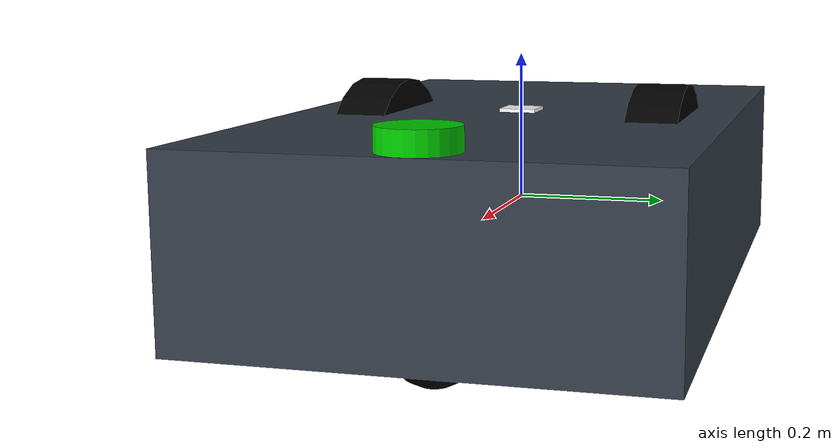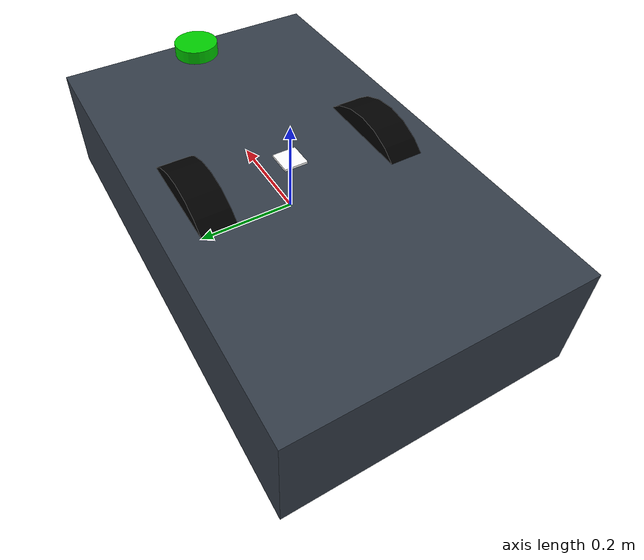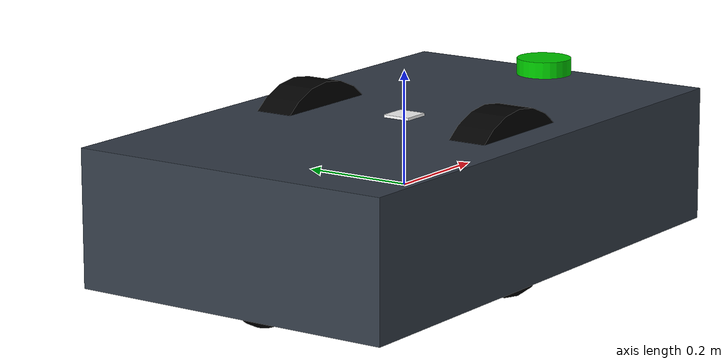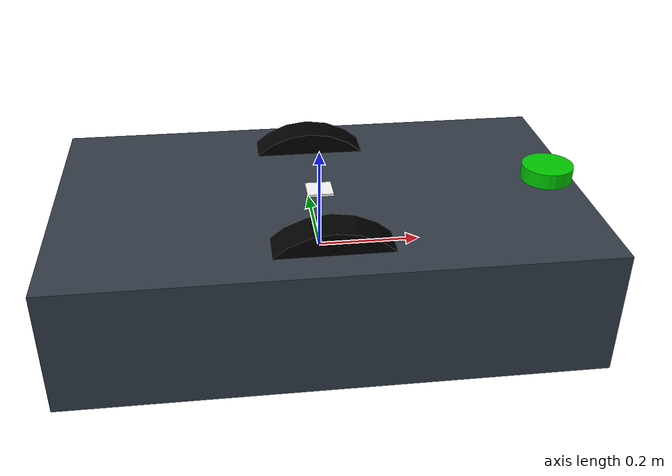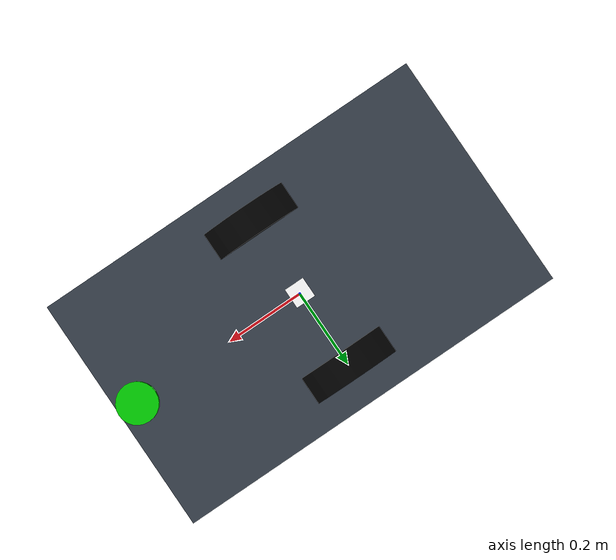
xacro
<?xml version="1.0"?>

<!--Created by Alphonsus Adu-Bredu
	Assistive Robotics Group, Tufts University
    Email: alphonsusbq436@gmail.com
-->
<robot name="bill" xmlns:xacro="http://www.ros.org/wiki/xacro">

<!-- Sphere inertia -->
	<xacro:macro name="sphere_inertial_with_origin" params="radius mass *origin">
	    <inertial>
	      <mass value="${mass}" />
	      <insert_block name="origin" />
	      <inertia ixx="${0.4 * mass * radius * radius}" ixy="0.0" ixz="0.0"
	        iyy="${0.4 * mass * radius * radius}" iyz="0.0"
	        izz="${0.4 * mass * radius * radius}" />
	    </inertial>
	  </xacro:macro>

<!-- Cuboid inertia -->
	<xacro:macro name="box_inertial" params="x y z mass">
		    <inertial>
		      <mass value="${mass}" />
		      <origin xyz="0 0 0" />
		      <inertia ixx="${0.0833333 * mass * (y*y + z*z)}" ixy="0.0" ixz="0.0"
		        iyy="${0.0833333 * mass * (x*x + z*z)}" iyz="0.0"
		        izz="${0.0833333 * mass * (x*x + y*y)}" />
		    </inertial>
    </xacro:macro>

<!-- Cylinder inertia -->
	<xacro:macro name="cylinder_inertial_with_origin" params="radius length mass *origin">
	    <inertial>
	      <mass value="${mass}" />
	      <insert_block name="origin" />
	      <inertia ixx="${0.0833333 * mass * (3 * radius * radius + length * length)}" ixy="0.0" ixz="0.0"
	        iyy="${0.0833333 * mass * (3 * radius * radius + length * length)}" iyz="0.0"
	        izz="${0.5 * mass * radius * radius}" />
	    </inertial>
  </xacro:macro>

	<gazebo>
	  <plugin name="gazebo_ros_control" filename="libgazebo_ros_control.so">
	    <robotNamespace>/bill</robotNamespace>
	    <robotSimType>gazebo_ros_control/DefaultRobotHWSim</robotSimType>
	  </plugin>
	</gazebo>

	<material name="black">
		<color rgba="0.0 0.0 0.0 1.0"/>
	</material>
	<material name="blue">
		<color rgba="0.203125 0.23828125 0.28515625 1.0"/>
	</material>
	<material name="green">
		<color rgba="0.0 0.8 0.0 1.0"/>
	</material>
	<material name="grey">
		<color rgba="0.2 0.2 0.2 1.0"/>
	</material>
	<material name="orange">
		<color rgba="1.0 0.423529411765 0.0392156862745 1.0"/>
	</material>
	<material name="brown">
		<color rgba="0.870588235294 0.811764705882 0.764705882353 1.0"/>
	</material>
	<material name="red">
		<color rgba="0.80078125 0.12890625 0.1328425 1.0"/>
	</material>
	<material name="white">
		<color rgba="1.0 1.0 1.0 1.0"/>
	</material>

	<gazebo reference="chassis">
		<material>Gazebo/White</material>
	</gazebo>

	<gazebo reference="caster">
		<material>Gazebo/Black</material>
	</gazebo>
	<gazebo reference="left_wheel">
		<material>Gazebo/Black</material>
	</gazebo>
	<gazebo reference="right_wheel">
		<material>Gazebo/Black</material>
	</gazebo>

	<link name="base_link"/>

	<link name="chassis">
		<!--pose and inertial-->
		<pose>0 0 0.1 0 0 0 </pose>
		<xacro:box_inertial x="1" y="0.6" z="0.24" mass="4"/>

		<!--body-->
		<collision name="collision_chassis">
			<geometry>
				<box size="1 0.6 0.24"/>
			</geometry>
		</collision>

		<visual>
			<origin rpy="0 0 0" xyz="0 0 0"/>
			<geometry>
				<box size="1 0.6 0.24"/>
			</geometry>
			<material name="blue"/>
		</visual>
	</link>

	<joint name="base_link_joint" type="fixed" >
		<parent link="base_link"/>
		<child link="chassis"/>

	</joint>

		<!--caster front -->
		<link name="caster">
			<inertial>
				<mass value="0.5"/>
				<origin rpy="1.57079632679 0 0" xyz="0 0 0"/>
				<inertia ixx="0.001" ixy="0" ixz="0" iyy="0.001" iyz="0" izz="0.001"/>
			</inertial>

			<collision name="caster_front_collision">
				<origin rpy="1.57079632679 0 0" xyz="0 0 -0.1"/>
				<geometry>
					<sphere radius="0.06"/>
				</geometry>
				<surface>
					<friction>
						<ode>
							<mu>0</mu>
							<mu2>0</mu2>
							<slip1>1.0</slip1>
							<slip2>1.0</slip2>
						</ode>
					</friction>
				</surface>
			</collision>

			<visual name="caster_front_visual">
				<origin rpy="1.57079632679 0 0" xyz="0 0 -0.1"/>
				<geometry>
					<sphere radius="0.06"/>
				</geometry>
				<material name="black"/>
			</visual>
		</link>

	<joint name="caster_front_joint" type="fixed">
	    <parent link="chassis"/>
	    <child link="caster"/>
	    <origin rpy="-1.57079632679 0 0" xyz="0.4 0.1 -0.1"/>
	</joint>

	  <gazebo reference="caster">
	    <turnGravityOff>false</turnGravityOff>
	  </gazebo>

	  <!--caster back -->
		<link name="casterback">

			<inertial>
				<mass value="0.6"/>
				<origin rpy="1.57079632679 0 0" xyz="0 0 0"/>
				<inertia ixx="0.001" ixy="0" ixz="0" iyy="0.001" iyz="0" izz="0.001"/>
			</inertial>

			<collision name="caster_back_collision">
				<origin rpy="1.57079632679 0 0" xyz="0 0 -0.1"/>
				<geometry>
					<sphere radius="0.06"/>
				</geometry>
				<surface>
					<friction>
						<ode>
							<mu>0</mu>
							<mu2>0</mu2>
							<slip1>1.0</slip1>
							<slip2>1.0</slip2>
						</ode>
					</friction>
				</surface>
			</collision>

			<visual name="caster_back_visual">
				<origin rpy="1.57079632679 0 0" xyz="0 0 -0.1"/>
				<geometry>
					<sphere radius="0.06"/>
				</geometry>
				<material name="black"/>
			</visual>
	</link>

	<joint name="caster_back_joint" type="fixed">
	    <parent link="chassis"/>
	    <child link="casterback"/>
	    <origin rpy="-1.57079632679 0 0" xyz="-0.4 0.1 -0.1"/>
	</joint>

	  <gazebo reference="casterback">
	    <turnGravityOff>false</turnGravityOff>
	  </gazebo>

<!--right wheel -->
	<link name="right_wheel">

		<inertial>
			<mass value="1"/>
			<origin rpy="0 1.5707 1.5707" xyz="0 0 0"/>
			<inertia ixx="0.000526666666667" ixy="0" ixz="0" iyy="0.000526666666667" iyz="0" izz="0.001"/>
		</inertial>

		<collision name="right_wheel_collision">
			<origin rpy="0 1.5707 1.5707" xyz="0 0 0"/>
			<geometry>
				<cylinder length="0.07" radius="0.162"/>
			</geometry>
		</collision>

		<visual name="right_wheel_visual">
			<origin rpy="0 1.5707 1.5707" xyz="0 0 0"/>
			<geometry>
				<cylinder length="0.07" radius="0.162"/>
			</geometry>
			<material name="black"/>
		</visual>
	</link>

	<joint name="right_wheel_joint" type="continuous">
		<origin rpy="0 0 0" xyz="0.0 0.20 0"/>
		<child link="right_wheel"/>
		<parent link="chassis"/>
		<axis rpy="0 0 0" xyz="0 1 0"/>
		<limit effort="10000" velocity="1000"/>
		<joint_properties damping="1.0" friction="1.0"/>
	</joint>

<!--left wheel -->
	<link name="left_wheel">

		<inertial>
			<mass value="1"/>
			<origin rpy="0 1.5707 1.5707" xyz="0 0 0"/>
			<inertia ixx="0.000526666666667" ixy="0" ixz="0" iyy="0.000526666666667" iyz="0" izz="0.001"/>
		</inertial>

		<collision name="left_wheel_collision">
			<origin rpy="0 1.5707 1.5707" xyz="0 0 0"/>
			<geometry>
				<cylinder length="0.07" radius="0.162"/>
			</geometry>
		</collision>

		<visual name="left_wheel_visual">
			<origin rpy="0 1.5707 1.5707" xyz="0 0 0"/>
			<geometry>
				<cylinder length="0.07" radius="0.162"/>
			</geometry>
			<material name="black"/>
		</visual>
	</link>

	<joint name="left_wheel_joint" type="continuous">
		<origin rpy="0 0 0" xyz="0.0 -0.20 0"/>
		<child link="left_wheel"/>
		<parent link="chassis"/>
		<axis rpy="0 0 0" xyz="0 1 0"/>
		<limit effort="10000" velocity="1000"/>
		<joint_properties damping="1.0" friction="1.0"/>
	</joint>

	<!--IMU-->
	<link name="imu">
	    <visual>
	      <origin rpy="0 0 0" xyz="0  0  0"/>
	      <geometry>
	        <box size="0.05 0.05 0.05"/>
	      </geometry>
	      <material name="white"/>
	    </visual>

	    <collision>
	      <origin rpy="0 0 0" xyz="0  0  0"/>
	      <geometry>
	        <box size="0.05 0.05 0.05"/>
	      </geometry>
	      <material name="white"/>
	    </collision>

	    <inertial>
		  <origin xyz="0 0 0.015" rpy="0 0 0"/>
		  <mass value="0.0001"/>
		  <inertia
		    ixx="1.0" ixy="0.0" ixz="0.0"
		    iyy="1.0" iyz="0.0"
		    izz="1.0"/>
		</inertial>
	</link>

	<joint name="imu_joint" type="fixed" >
		<parent link="chassis"/>
		<child link="imu"/>
		<origin xyz="0.0 0 0.1" rpy="0 0 0"/>
	</joint>

	<gazebo reference="imu">
		<material>Gazebo/Blue</material>
	    <gravity>true</gravity>
	    <sensor name="imu_sensor" type="imu">
	      <always_on>true</always_on>
	      <update_rate>100</update_rate>
	      <visualize>true</visualize>
	      <topic>__default_topic__</topic>
	      <plugin filename="libgazebo_ros_imu_sensor.so" name="imu_plugin">
	        <topicName>/imu</topicName>
	        <bodyName>imu</bodyName>
	        <updateRateHZ>10.0</updateRateHZ>
	        <gaussianNoise>0.0</gaussianNoise>
	        <xyzOffset>0 0 0</xyzOffset>
	        <rpyOffset>0 0 0</rpyOffset>
	        <frameName>imu</frameName>
	      </plugin>
	      <pose>0 0 0 0 0 0</pose>
	    </sensor>
    </gazebo>

	<!--rplidar-->
	<link name="rplidar">
	    <visual>
	      <origin rpy="0 0 0" xyz="0 0 0"/>
	      <geometry>
	        <cylinder length="0.1" radius="0.05"/>
	      </geometry>
	      <material name="green"/>
	    </visual>

	    <collision>
	      <origin rpy="0 0 0" xyz="0  0  0"/>
	      <geometry>
	        <cylinder length="0.1" radius="0.05"/>
	      </geometry>
	      <material name="green"/>
	    </collision>

	    <xacro:cylinder_inertial_with_origin radius="0.05" length="0.1" mass="0.0001">
			<origin xyz="0 0 0" rpy="0 0 0"/>
		</xacro:cylinder_inertial_with_origin>

	</link>

	<joint name="rplidar_joint" type="fixed" >
		<parent link="chassis"/>
		<child link="rplidar"/>
		<origin xyz="0.45 0 0.1" rpy="0 0 0"/>
	</joint>

	<gazebo reference="rplidar">
	    <material>Gazebo/Green</material>
	    <turnGravityOff>false</turnGravityOff>
	    <sensor name="head_hokuyo_sensor" type="ray">
	      <pose>0.025 0 0 0 0 0</pose>
	      <visualize>false</visualize>
	      <update_rate>40</update_rate>
	      <ray>
	        <scan>
	          <horizontal>
	            <samples>720</samples>
	            <resolution>1</resolution>
	            <min_angle>-1.570796</min_angle>
	            <max_angle>1.570796</max_angle>
	          </horizontal>
	        </scan>
	        <range>
	          <min>0.50</min>
	          <max>50.0</max>
	          <resolution>0.001</resolution>
	        </range>
	      </ray>
	      <plugin filename="libgazebo_ros_laser.so" name="gazebo_ros_head_hokuyo_controller">
	        <topicName>/scan</topicName>
	        <frameName>rplidar</frameName>
	      </plugin>
	    </sensor>
	</gazebo>

	<!--Joint transmissions-->
	<transmission name="tran1">
			<type>transmission_interface/SimpleTransmission</type>
			<joint name ="left_wheel_joint">
				<hardwareInterface>hardware_interface/EffortJointInterface</hardwareInterface>
			</joint>
			<actuator name="motor1">
		      <hardwareInterface>EffortJointInterface</hardwareInterface>
		      <mechanicalReduction>1</mechanicalReduction>
		    </actuator>
	</transmission>

	<transmission name="tran2">
			<type>transmission_interface/SimpleTransmission</type>
			<joint name ="right_wheel_joint">
				<hardwareInterface>hardware_interface/EffortJointInterface</hardwareInterface>
			</joint>
			<actuator name="motor2">
		      <hardwareInterface>EffortJointInterface</hardwareInterface>
		      <mechanicalReduction>1</mechanicalReduction>
		    </actuator>
	</transmission>

</robot>
